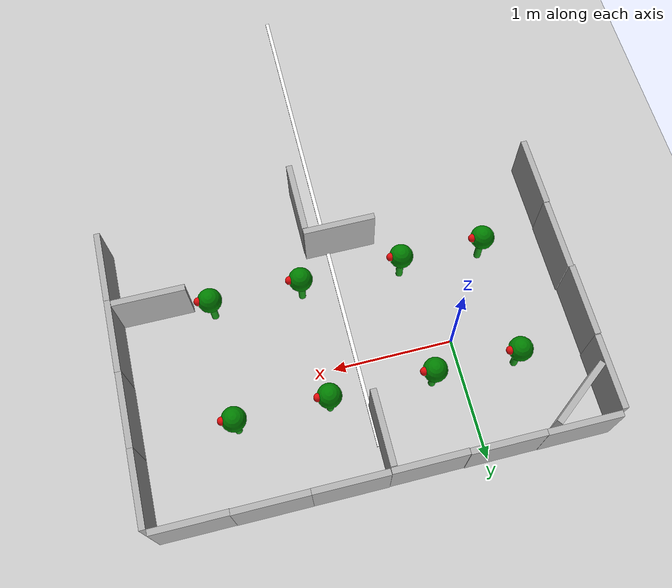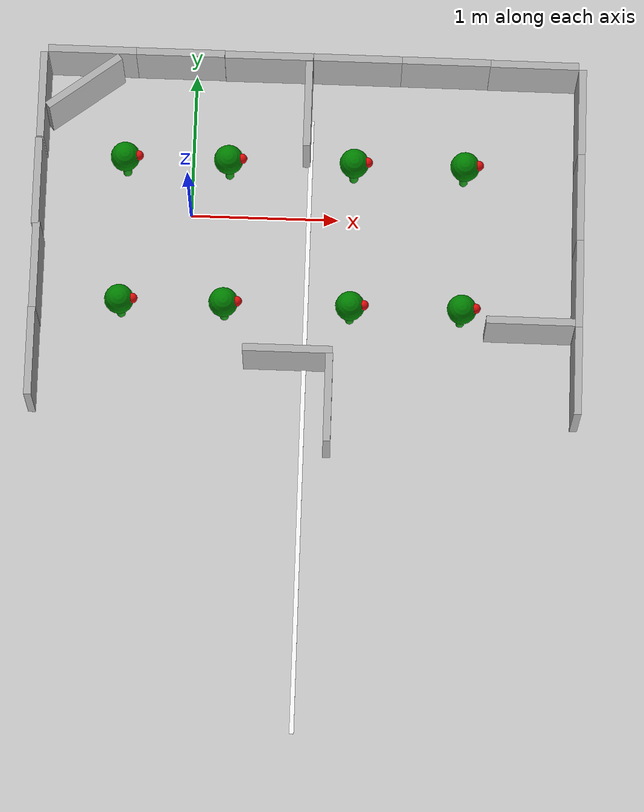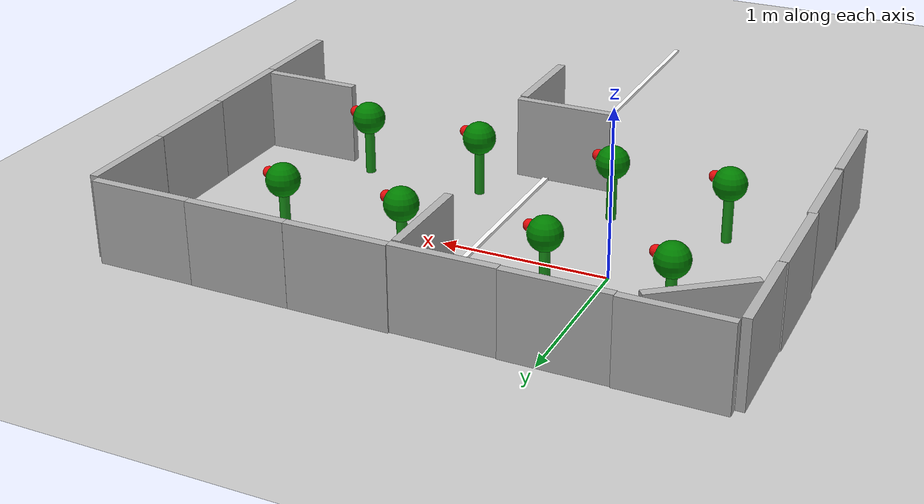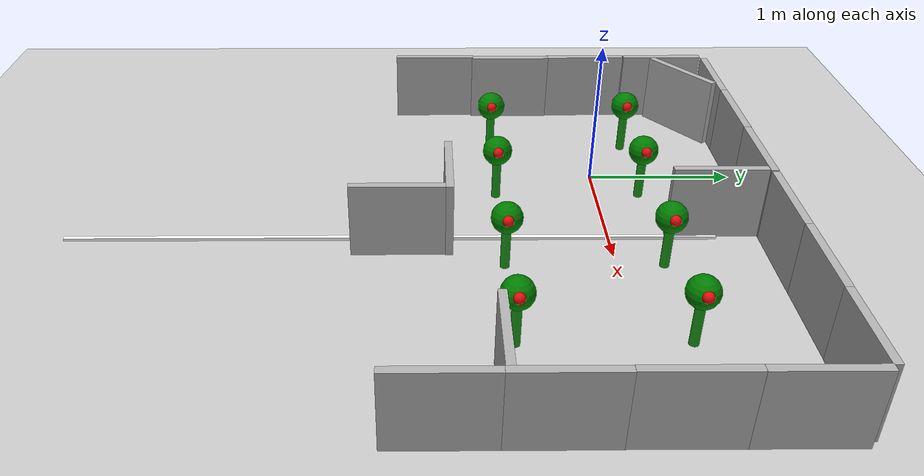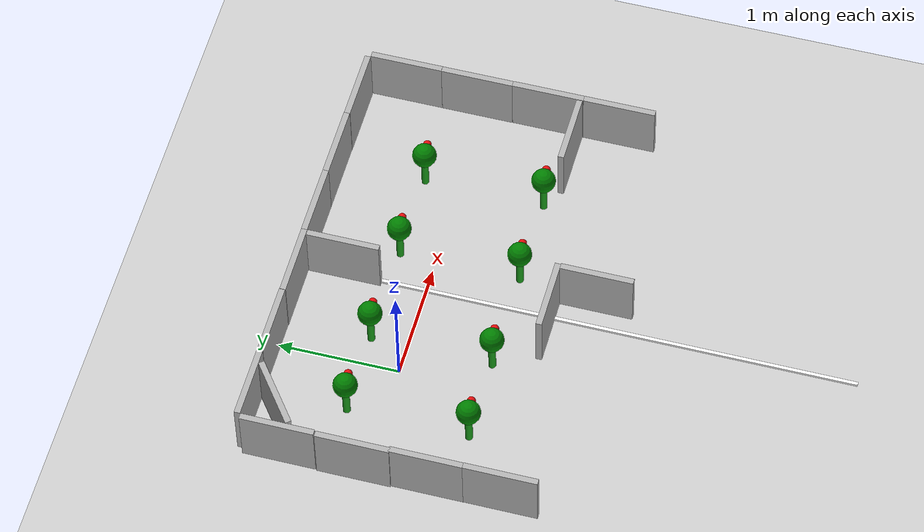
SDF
<sdf version="1.8">
 <world name="default">
  <model name="ground_plane">
   <static>true</static>
   <link name="link">
    <collision name="collision">
     <geometry><plane><normal>0 0 1</normal><size>100 100</size></plane></geometry>
    </collision>
    <visual name="visual">
     <geometry><plane><normal>0 0 1</normal><size>100 100</size></plane></geometry>
     <material>
      <ambient>0.800000012 0.800000012 0.800000012 1</ambient>
      <diffuse>0.800000012 0.800000012 0.800000012 1</diffuse>
      <specular>0.800000012 0.800000012 0.800000012 1</specular>
     </material>
    </visual>
    <inertial>
     <mass>1</mass>
     <inertia><ixx>1</ixx><ixy>0</ixy><ixz>0</ixz><iyy>1</iyy><iyz>0</iyz><izz>1</izz></inertia>
    </inertial>
   </link>
  </model>
  <model name="box">
   <pose>-1.0242099761962891 0.67777901887893677 0.26292604207992554 0 0 0</pose>
   <link name="box_link">
    <inertial>
     <inertia><ixx>0.16666</ixx><ixy>0</ixy><ixz>0</ixz><iyy>0.16666</iyy><iyz>0</iyz><izz>0.16666</izz></inertia>
     <mass>1</mass>
    </inertial>
    <collision name="box_collision">
     <geometry><box><size>0.050000000000000003 0.55 0.5</size></box></geometry>
    </collision>
    <visual name="box_visual">
     <geometry><box><size>0.050000000000000003 0.59999999999999998 0.5</size></box></geometry>
     <material>
      <ambient>0.300000012 0.300000012 0.300000012 1</ambient>
      <diffuse>0.699999988 0.699999988 0.699999988 1</diffuse>
      <specular>1 1 1 1</specular>
     </material>
    </visual>
   </link>
   <static>false</static>
  </model>
  <model name="box_1">
   <pose>-1.03 0.070000000000000007 0.26000000000000001 0 0 0</pose>
   <link name="box_link">
    <inertial>
     <inertia><ixx>0.16666</ixx><ixy>0</ixy><ixz>0</ixz><iyy>0.16666</iyy><iyz>0</iyz><izz>0.16666</izz></inertia>
     <mass>1</mass>
    </inertial>
    <collision name="box_collision">
     <geometry><box><size>0.050000000000000003 0.55 0.5</size></box></geometry>
    </collision>
    <visual name="box_visual">
     <geometry><box><size>0.050000000000000003 0.59999999999999998 0.5</size></box></geometry>
     <material>
      <ambient>0.300000012 0.300000012 0.300000012 1</ambient>
      <diffuse>0.699999988 0.699999988 0.699999988 1</diffuse>
      <specular>1 1 1 1</specular>
     </material>
    </visual>
   </link>
   <static>false</static>
  </model>
  <model name="box_2">
   <pose>-1.02 -0.52000000000000002 0.26000000000000001 0 0 0</pose>
   <link name="box_link">
    <inertial>
     <inertia><ixx>0.16666</ixx><ixy>0</ixy><ixz>0</ixz><iyy>0.16666</iyy><iyz>0</iyz><izz>0.16666</izz></inertia>
     <mass>1</mass>
    </inertial>
    <collision name="box_collision">
     <geometry><box><size>0.050000000000000003 0.55 0.5</size></box></geometry>
    </collision>
    <visual name="box_visual">
     <geometry><box><size>0.050000000000000003 0.59999999999999998 0.5</size></box></geometry>
     <material>
      <ambient>0.300000012 0.300000012 0.300000012 1</ambient>
      <diffuse>0.699999988 0.699999988 0.699999988 1</diffuse>
      <specular>1 1 1 1</specular>
     </material>
    </visual>
   </link>
   <static>false</static>
  </model>
  <model name="box_3">
   <pose>-1.0226199626922607 -1.1138999462127686 0.26708531379699707 0 0 0</pose>
   <link name="box_link">
    <inertial>
     <inertia><ixx>0.16666</ixx><ixy>0</ixy><ixz>0</ixz><iyy>0.16666</iyy><iyz>0</iyz><izz>0.16666</izz></inertia>
     <mass>1</mass>
    </inertial>
    <collision name="box_collision">
     <geometry><box><size>0.050000000000000003 0.55 0.5</size></box></geometry>
    </collision>
    <visual name="box_visual">
     <geometry><box><size>0.050000000000000003 0.59999999999999998 0.5</size></box></geometry>
     <material>
      <ambient>0.300000012 0.300000012 0.300000012 1</ambient>
      <diffuse>0.699999988 0.699999988 0.699999988 1</diffuse>
      <specular>1 1 1 1</specular>
     </material>
    </visual>
   </link>
   <static>false</static>
  </model>
  <model name="box_8">
   <pose>-0.69749999046325684 1.0066399574279787 0.25750440359115601 0 0 1.5658000872875657</pose>
   <link name="box_link">
    <inertial>
     <inertia><ixx>0.16666</ixx><ixy>0</ixy><ixz>0</ixz><iyy>0.16666</iyy><iyz>0</iyz><izz>0.16666</izz></inertia>
     <mass>1</mass>
    </inertial>
    <collision name="box_collision">
     <geometry><box><size>0.050000000000000003 0.55 0.5</size></box></geometry>
    </collision>
    <visual name="box_visual">
     <geometry><box><size>0.050000000000000003 0.59999999999999998 0.5</size></box></geometry>
     <material>
      <ambient>0.300000012 0.300000012 0.300000012 1</ambient>
      <diffuse>0.699999988 0.699999988 0.699999988 1</diffuse>
      <specular>1 1 1 1</specular>
     </material>
    </visual>
   </link>
   <static>false</static>
  </model>
  <model name="box_8_1">
   <pose>-0.10089799761772156 1.0029499530792234 0.26086625456809998 0 0 1.56841005300998</pose>
   <link name="box_link">
    <inertial>
     <inertia><ixx>0.16666</ixx><ixy>0</ixy><ixz>0</ixz><iyy>0.16666</iyy><iyz>0</iyz><izz>0.16666</izz></inertia>
     <mass>1</mass>
    </inertial>
    <collision name="box_collision">
     <geometry><box><size>0.050000000000000003 0.55 0.5</size></box></geometry>
    </collision>
    <visual name="box_visual">
     <geometry><box><size>0.050000000000000003 0.59999999999999998 0.5</size></box></geometry>
     <material>
      <ambient>0.300000012 0.300000012 0.300000012 1</ambient>
      <diffuse>0.699999988 0.699999988 0.699999988 1</diffuse>
      <specular>1 1 1 1</specular>
     </material>
    </visual>
   </link>
   <static>false</static>
  </model>
  <model name="box_8_2">
   <pose>0.4999748468399049 0.99842858314514138 0.2626970112323761 0 0 1.5700000841906609</pose>
   <link name="box_link">
    <inertial>
     <inertia><ixx>0.16666</ixx><ixy>0</ixy><ixz>0</ixz><iyy>0.16666</iyy><iyz>0</iyz><izz>0.16666</izz></inertia>
     <mass>1</mass>
    </inertial>
    <collision name="box_collision">
     <geometry><box><size>0.050000000000000003 0.55 0.5</size></box></geometry>
    </collision>
    <visual name="box_visual">
     <geometry><box><size>0.050000000000000003 0.59999999999999998 0.5</size></box></geometry>
     <material>
      <ambient>0.300000012 0.300000012 0.300000012 1</ambient>
      <diffuse>0.699999988 0.699999988 0.699999988 1</diffuse>
      <specular>1 1 1 1</specular>
     </material>
    </visual>
   </link>
   <static>false</static>
  </model>
  <model name="box_8_3">
   <pose>1.1022270375607515 0.99910312174961913 0.25750398635864258 0 0 1.5658000872875657</pose>
   <link name="box_link">
    <inertial>
     <inertia><ixx>0.16666</ixx><ixy>0</ixy><ixz>0</ixz><iyy>0.16666</iyy><iyz>0</iyz><izz>0.16666</izz></inertia>
     <mass>1</mass>
    </inertial>
    <collision name="box_collision">
     <geometry><box><size>0.050000000000000003 0.55 0.5</size></box></geometry>
    </collision>
    <visual name="box_visual">
     <geometry><box><size>0.050000000000000003 0.59999999999999998 0.5</size></box></geometry>
     <material>
      <ambient>0.300000012 0.300000012 0.300000012 1</ambient>
      <diffuse>0.699999988 0.699999988 0.699999988 1</diffuse>
      <specular>1 1 1 1</specular>
     </material>
    </visual>
   </link>
   <static>false</static>
  </model>
  <model name="box_8_4">
   <pose>1.701962914249203 0.99650460313267275 0.25750398635864258 0 0 1.5658000872875657</pose>
   <link name="box_link">
    <inertial>
     <inertia><ixx>0.16666</ixx><ixy>0</ixy><ixz>0</ixz><iyy>0.16666</iyy><iyz>0</iyz><izz>0.16666</izz></inertia>
     <mass>1</mass>
    </inertial>
    <collision name="box_collision">
     <geometry><box><size>0.050000000000000003 0.55 0.5</size></box></geometry>
    </collision>
    <visual name="box_visual">
     <geometry><box><size>0.050000000000000003 0.59999999999999998 0.5</size></box></geometry>
     <material>
      <ambient>0.300000012 0.300000012 0.300000012 1</ambient>
      <diffuse>0.699999988 0.699999988 0.699999988 1</diffuse>
      <specular>1 1 1 1</specular>
     </material>
    </visual>
   </link>
   <static>false</static>
  </model>
  <model name="box_8_5">
   <pose>2.3000763394988408 0.99137905356510148 0.25750398635864258 0 0 1.5658000872875657</pose>
   <link name="box_link">
    <inertial>
     <inertia><ixx>0.16666</ixx><ixy>0</ixy><ixz>0</ixz><iyy>0.16666</iyy><iyz>0</iyz><izz>0.16666</izz></inertia>
     <mass>1</mass>
    </inertial>
    <collision name="box_collision">
     <geometry><box><size>0.050000000000000003 0.55 0.5</size></box></geometry>
    </collision>
    <visual name="box_visual">
     <geometry><box><size>0.050000000000000003 0.59999999999999998 0.5</size></box></geometry>
     <material>
      <ambient>0.300000012 0.300000012 0.300000012 1</ambient>
      <diffuse>0.699999988 0.699999988 0.699999988 1</diffuse>
      <specular>1 1 1 1</specular>
     </material>
    </visual>
   </link>
   <static>false</static>
  </model>
  <model name="box_9">
   <pose>2.626252963941734 0.66552933060747566 0.26292601227760315 0 0 0</pose>
   <link name="box_link">
    <inertial>
     <inertia><ixx>0.16666</ixx><ixy>0</ixy><ixz>0</ixz><iyy>0.16666</iyy><iyz>0</iyz><izz>0.16666</izz></inertia>
     <mass>1</mass>
    </inertial>
    <collision name="box_collision">
     <geometry><box><size>0.050000000000000003 0.55 0.5</size></box></geometry>
    </collision>
    <visual name="box_visual">
     <geometry><box><size>0.050000000000000003 0.59999999999999998 0.5</size></box></geometry>
     <material>
      <ambient>0.300000012 0.300000012 0.300000012 1</ambient>
      <diffuse>0.699999988 0.699999988 0.699999988 1</diffuse>
      <specular>1 1 1 1</specular>
     </material>
    </visual>
   </link>
   <static>false</static>
  </model>
  <model name="box_10">
   <pose>2.625702667551475 0.065195542834084463 0.26292601227760315 0 0 0</pose>
   <link name="box_link">
    <inertial>
     <inertia><ixx>0.16666</ixx><ixy>0</ixy><ixz>0</ixz><iyy>0.16666</iyy><iyz>0</iyz><izz>0.16666</izz></inertia>
     <mass>1</mass>
    </inertial>
    <collision name="box_collision">
     <geometry><box><size>0.050000000000000003 0.55 0.5</size></box></geometry>
    </collision>
    <visual name="box_visual">
     <geometry><box><size>0.050000000000000003 0.59999999999999998 0.5</size></box></geometry>
     <material>
      <ambient>0.300000012 0.300000012 0.300000012 1</ambient>
      <diffuse>0.699999988 0.699999988 0.699999988 1</diffuse>
      <specular>1 1 1 1</specular>
     </material>
    </visual>
   </link>
   <static>false</static>
  </model>
  <model name="box_11">
   <pose>2.6275927926499159 -0.53502727789761817 0.26292601227760315 0 0 0</pose>
   <link name="box_link">
    <inertial>
     <inertia><ixx>0.16666</ixx><ixy>0</ixy><ixz>0</ixz><iyy>0.16666</iyy><iyz>0</iyz><izz>0.16666</izz></inertia>
     <mass>1</mass>
    </inertial>
    <collision name="box_collision">
     <geometry><box><size>0.050000000000000003 0.55 0.5</size></box></geometry>
    </collision>
    <visual name="box_visual">
     <geometry><box><size>0.050000000000000003 0.59999999999999998 0.5</size></box></geometry>
     <material>
      <ambient>0.300000012 0.300000012 0.300000012 1</ambient>
      <diffuse>0.699999988 0.699999988 0.699999988 1</diffuse>
      <specular>1 1 1 1</specular>
     </material>
    </visual>
   </link>
   <static>false</static>
  </model>
  <model name="box_12">
   <pose>2.6281152505346235 -1.1352186579326506 0.26292601227760315 0 0 0</pose>
   <link name="box_link">
    <inertial>
     <inertia><ixx>0.16666</ixx><ixy>0</ixy><ixz>0</ixz><iyy>0.16666</iyy><iyz>0</iyz><izz>0.16666</izz></inertia>
     <mass>1</mass>
    </inertial>
    <collision name="box_collision">
     <geometry><box><size>0.050000000000000003 0.55 0.5</size></box></geometry>
    </collision>
    <visual name="box_visual">
     <geometry><box><size>0.050000000000000003 0.59999999999999998 0.5</size></box></geometry>
     <material>
      <ambient>0.300000012 0.300000012 0.300000012 1</ambient>
      <diffuse>0.699999988 0.699999988 0.699999988 1</diffuse>
      <specular>1 1 1 1</specular>
     </material>
    </visual>
   </link>
   <static>false</static>
  </model>
  <model name="box_8_5_9">
   <pose>2.3106882813119443 -0.80301534855683077 0.25750398635864258 0 0 1.5658000872875657</pose>
   <link name="box_link">
    <inertial>
     <inertia><ixx>0.16666</ixx><ixy>0</ixy><ixz>0</ixz><iyy>0.16666</iyy><iyz>0</iyz><izz>0.16666</izz></inertia>
     <mass>1</mass>
    </inertial>
    <collision name="box_collision">
     <geometry><box><size>0.050000000000000003 0.55 0.5</size></box></geometry>
    </collision>
    <visual name="box_visual">
     <geometry><box><size>0.050000000000000003 0.59999999999999998 0.5</size></box></geometry>
     <material>
      <ambient>0.300000012 0.300000012 0.300000012 1</ambient>
      <diffuse>0.699999988 0.699999988 0.699999988 1</diffuse>
      <specular>1 1 1 1</specular>
     </material>
    </visual>
   </link>
   <static>false</static>
  </model>
  <model name="box_1_1">
   <pose>0.77402352846331013 0.66890409951665486 0.26661500334739685 0 0 0</pose>
   <link name="box_link">
    <inertial>
     <inertia><ixx>0.16666</ixx><ixy>0</ixy><ixz>0</ixz><iyy>0.16666</iyy><iyz>0</iyz><izz>0.16666</izz></inertia>
     <mass>1</mass>
    </inertial>
    <collision name="box_collision">
     <geometry><box><size>0.050000000000000003 0.55 0.5</size></box></geometry>
    </collision>
    <visual name="box_visual">
     <geometry><box><size>0.050000000000000003 0.59999999999999998 0.5</size></box></geometry>
     <material>
      <ambient>0.300000012 0.300000012 0.300000012 1</ambient>
      <diffuse>0.699999988 0.699999988 0.699999988 1</diffuse>
      <specular>1 1 1 1</specular>
     </material>
    </visual>
   </link>
   <static>false</static>
  </model>
  <model name="box_1_2_2">
   <pose>-0.74630128513783545 0.77809146078665803 0.26661500334739685 0 0 -0.9211320022812256</pose>
   <link name="box_link">
    <inertial>
     <inertia><ixx>0.16666</ixx><ixy>0</ixy><ixz>0</ixz><iyy>0.16666</iyy><iyz>0</iyz><izz>0.16666</izz></inertia>
     <mass>1</mass>
    </inertial>
    <collision name="box_collision">
     <geometry><box><size>0.050000000000000003 0.55 0.5</size></box></geometry>
    </collision>
    <visual name="box_visual">
     <geometry><box><size>0.050000000000000003 0.59999999999999998 0.5</size></box></geometry>
     <material>
      <ambient>0.300000012 0.300000012 0.300000012 1</ambient>
      <diffuse>0.699999988 0.699999988 0.699999988 1</diffuse>
      <specular>1 1 1 1</specular>
     </material>
    </visual>
   </link>
   <static>false</static>
  </model>
  <model name="box_1_1_1">
   <pose>0.97109466823778412 -1.3696296970979935 0.26661500334739685 0 0 0</pose>
   <link name="box_link">
    <inertial>
     <inertia><ixx>0.16666</ixx><ixy>0</ixy><ixz>0</ixz><iyy>0.16666</iyy><iyz>0</iyz><izz>0.16666</izz></inertia>
     <mass>1</mass>
    </inertial>
    <collision name="box_collision">
     <geometry><box><size>0.050000000000000003 0.55 0.5</size></box></geometry>
    </collision>
    <visual name="box_visual">
     <geometry><box><size>0.050000000000000003 0.59999999999999998 0.5</size></box></geometry>
     <material>
      <ambient>0.300000012 0.300000012 0.300000012 1</ambient>
      <diffuse>0.699999988 0.699999988 0.699999988 1</diffuse>
      <specular>1 1 1 1</specular>
     </material>
    </visual>
   </link>
   <static>false</static>
  </model>
  <model name="box_8_1_1">
   <pose>0.69148297125501235 -1.0442157666892553 0.26086598634719849 0 0 1.56841005300998</pose>
   <link name="box_link">
    <inertial>
     <inertia><ixx>0.16666</ixx><ixy>0</ixy><ixz>0</ixz><iyy>0.16666</iyy><iyz>0</iyz><izz>0.16666</izz></inertia>
     <mass>1</mass>
    </inertial>
    <collision name="box_collision">
     <geometry><box><size>0.050000000000000003 0.55 0.5</size></box></geometry>
    </collision>
    <visual name="box_visual">
     <geometry><box><size>0.050000000000000003 0.59999999999999998 0.5</size></box></geometry>
     <material>
      <ambient>0.300000012 0.300000012 0.300000012 1</ambient>
      <diffuse>0.699999988 0.699999988 0.699999988 1</diffuse>
      <specular>1 1 1 1</specular>
     </material>
    </visual>
   </link>
   <static>false</static>
  </model>
  <model name="zone_divider">
   <static>true</static>
   <pose>0.80 -1.425 0.015 0 0 0</pose>
   <link name="link">
    <visual name="visual">
     <geometry><box><size>0.03 4.25 0.02</size></box></geometry>
     <material><ambient>1.0 1.0 1.0 1.0</ambient><diffuse>1.0 1.0 1.0 1.0</diffuse></material>
    </visual>
   </link>
  </model>
  <model name="plant_a1">
   <static>true</static>
   <pose>-0.45 0.30 0.0 0 0 0</pose>
   <link name="link">
    <visual name="stem">
     <pose>0 0 0.15 0 0 0</pose>
     <geometry><cylinder><radius>0.03</radius><length>0.30</length></cylinder></geometry>
     <material><ambient>0.1 0.5 0.1 1</ambient><diffuse>0.1 0.6 0.1 1</diffuse></material>
    </visual>
    <visual name="canopy">
     <pose>0 0 0.36 0 0 0</pose>
     <geometry><sphere><radius>0.10</radius></sphere></geometry>
     <material><ambient>0.0 0.40 0.0 1</ambient><diffuse>0.0 0.50 0.0 1</diffuse></material>
    </visual>
    <visual name="berry">
     <pose>0.09 0 0.39 0 0 0</pose>
     <geometry><sphere><radius>0.035</radius></sphere></geometry>
     <material><ambient>0.85 0.05 0.05 1</ambient><diffuse>0.9 0.05 0.05 1</diffuse></material>
    </visual>
   </link>
  </model>
  <model name="plant_a2">
   <static>true</static>
   <pose>-0.45 -0.70 0.0 0 0 0</pose>
   <link name="link">
    <visual name="stem">
     <pose>0 0 0.15 0 0 0</pose>
     <geometry><cylinder><radius>0.03</radius><length>0.30</length></cylinder></geometry>
     <material><ambient>0.1 0.5 0.1 1</ambient><diffuse>0.1 0.6 0.1 1</diffuse></material>
    </visual>
    <visual name="canopy">
     <pose>0 0 0.36 0 0 0</pose>
     <geometry><sphere><radius>0.10</radius></sphere></geometry>
     <material><ambient>0.0 0.40 0.0 1</ambient><diffuse>0.0 0.50 0.0 1</diffuse></material>
    </visual>
    <visual name="berry">
     <pose>0.09 0 0.39 0 0 0</pose>
     <geometry><sphere><radius>0.035</radius></sphere></geometry>
     <material><ambient>0.85 0.05 0.05 1</ambient><diffuse>0.9 0.05 0.05 1</diffuse></material>
    </visual>
   </link>
  </model>
  <model name="plant_a5">
   <static>true</static>
   <pose>0.25 0.30 0.0 0 0 0</pose>
   <link name="link">
    <visual name="stem">
     <pose>0 0 0.15 0 0 0</pose>
     <geometry><cylinder><radius>0.03</radius><length>0.30</length></cylinder></geometry>
     <material><ambient>0.1 0.5 0.1 1</ambient><diffuse>0.1 0.6 0.1 1</diffuse></material>
    </visual>
    <visual name="canopy">
     <pose>0 0 0.36 0 0 0</pose>
     <geometry><sphere><radius>0.10</radius></sphere></geometry>
     <material><ambient>0.0 0.40 0.0 1</ambient><diffuse>0.0 0.50 0.0 1</diffuse></material>
    </visual>
    <visual name="berry">
     <pose>0.09 0 0.39 0 0 0</pose>
     <geometry><sphere><radius>0.035</radius></sphere></geometry>
     <material><ambient>0.85 0.05 0.05 1</ambient><diffuse>0.9 0.05 0.05 1</diffuse></material>
    </visual>
   </link>
  </model>
  <model name="plant_a6">
   <static>true</static>
   <pose>0.25 -0.70 0.0 0 0 0</pose>
   <link name="link">
    <visual name="stem">
     <pose>0 0 0.15 0 0 0</pose>
     <geometry><cylinder><radius>0.03</radius><length>0.30</length></cylinder></geometry>
     <material><ambient>0.1 0.5 0.1 1</ambient><diffuse>0.1 0.6 0.1 1</diffuse></material>
    </visual>
    <visual name="canopy">
     <pose>0 0 0.36 0 0 0</pose>
     <geometry><sphere><radius>0.10</radius></sphere></geometry>
     <material><ambient>0.0 0.40 0.0 1</ambient><diffuse>0.0 0.50 0.0 1</diffuse></material>
    </visual>
    <visual name="berry">
     <pose>0.09 0 0.39 0 0 0</pose>
     <geometry><sphere><radius>0.035</radius></sphere></geometry>
     <material><ambient>0.85 0.05 0.05 1</ambient><diffuse>0.9 0.05 0.05 1</diffuse></material>
    </visual>
   </link>
  </model>
  <model name="plant_b1">
   <static>true</static>
   <pose>1.10 0.30 0.0 0 0 0</pose>
   <link name="link">
    <visual name="stem">
     <pose>0 0 0.15 0 0 0</pose>
     <geometry><cylinder><radius>0.03</radius><length>0.30</length></cylinder></geometry>
     <material><ambient>0.1 0.5 0.1 1</ambient><diffuse>0.1 0.6 0.1 1</diffuse></material>
    </visual>
    <visual name="canopy">
     <pose>0 0 0.36 0 0 0</pose>
     <geometry><sphere><radius>0.10</radius></sphere></geometry>
     <material><ambient>0.0 0.40 0.0 1</ambient><diffuse>0.0 0.50 0.0 1</diffuse></material>
    </visual>
    <visual name="berry">
     <pose>0.09 0 0.39 0 0 0</pose>
     <geometry><sphere><radius>0.035</radius></sphere></geometry>
     <material><ambient>0.85 0.05 0.05 1</ambient><diffuse>0.9 0.05 0.05 1</diffuse></material>
    </visual>
   </link>
  </model>
  <model name="plant_b2">
   <static>true</static>
   <pose>1.10 -0.70 0.0 0 0 0</pose>
   <link name="link">
    <visual name="stem">
     <pose>0 0 0.15 0 0 0</pose>
     <geometry><cylinder><radius>0.03</radius><length>0.30</length></cylinder></geometry>
     <material><ambient>0.1 0.5 0.1 1</ambient><diffuse>0.1 0.6 0.1 1</diffuse></material>
    </visual>
    <visual name="canopy">
     <pose>0 0 0.36 0 0 0</pose>
     <geometry><sphere><radius>0.10</radius></sphere></geometry>
     <material><ambient>0.0 0.40 0.0 1</ambient><diffuse>0.0 0.50 0.0 1</diffuse></material>
    </visual>
    <visual name="berry">
     <pose>0.09 0 0.39 0 0 0</pose>
     <geometry><sphere><radius>0.035</radius></sphere></geometry>
     <material><ambient>0.85 0.05 0.05 1</ambient><diffuse>0.9 0.05 0.05 1</diffuse></material>
    </visual>
   </link>
  </model>
  <model name="plant_b5">
   <static>true</static>
   <pose>1.85 0.30 0.0 0 0 0</pose>
   <link name="link">
    <visual name="stem">
     <pose>0 0 0.15 0 0 0</pose>
     <geometry><cylinder><radius>0.03</radius><length>0.30</length></cylinder></geometry>
     <material><ambient>0.1 0.5 0.1 1</ambient><diffuse>0.1 0.6 0.1 1</diffuse></material>
    </visual>
    <visual name="canopy">
     <pose>0 0 0.36 0 0 0</pose>
     <geometry><sphere><radius>0.10</radius></sphere></geometry>
     <material><ambient>0.0 0.40 0.0 1</ambient><diffuse>0.0 0.50 0.0 1</diffuse></material>
    </visual>
    <visual name="berry">
     <pose>0.09 0 0.39 0 0 0</pose>
     <geometry><sphere><radius>0.035</radius></sphere></geometry>
     <material><ambient>0.85 0.05 0.05 1</ambient><diffuse>0.9 0.05 0.05 1</diffuse></material>
    </visual>
   </link>
  </model>
  <model name="plant_b6">
   <static>true</static>
   <pose>1.85 -0.70 0.0 0 0 0</pose>
   <link name="link">
    <visual name="stem">
     <pose>0 0 0.15 0 0 0</pose>
     <geometry><cylinder><radius>0.03</radius><length>0.30</length></cylinder></geometry>
     <material><ambient>0.1 0.5 0.1 1</ambient><diffuse>0.1 0.6 0.1 1</diffuse></material>
    </visual>
    <visual name="canopy">
     <pose>0 0 0.36 0 0 0</pose>
     <geometry><sphere><radius>0.10</radius></sphere></geometry>
     <material><ambient>0.0 0.40 0.0 1</ambient><diffuse>0.0 0.50 0.0 1</diffuse></material>
    </visual>
    <visual name="berry">
     <pose>0.09 0 0.39 0 0 0</pose>
     <geometry><sphere><radius>0.035</radius></sphere></geometry>
     <material><ambient>0.85 0.05 0.05 1</ambient><diffuse>0.9 0.05 0.05 1</diffuse></material>
    </visual>
   </link>
  </model>
 </world>
</sdf>
